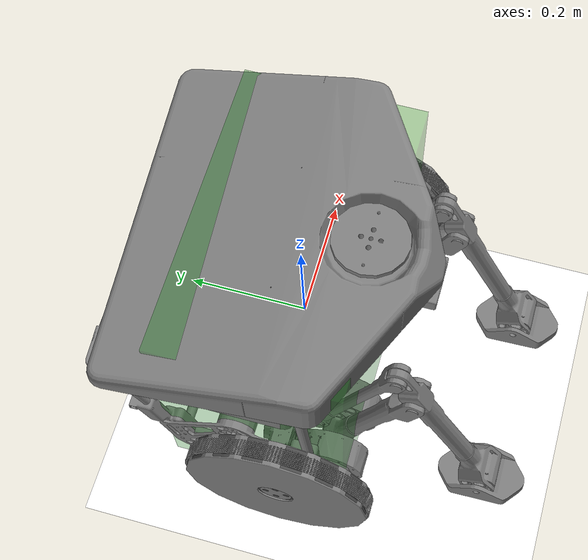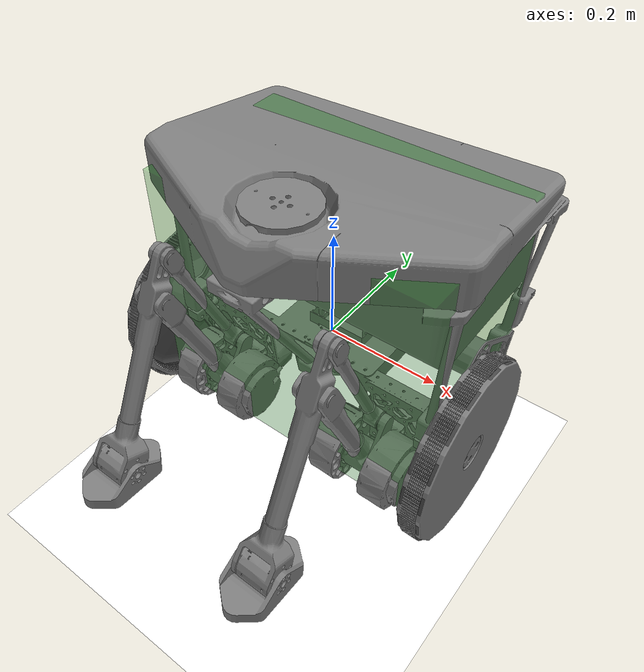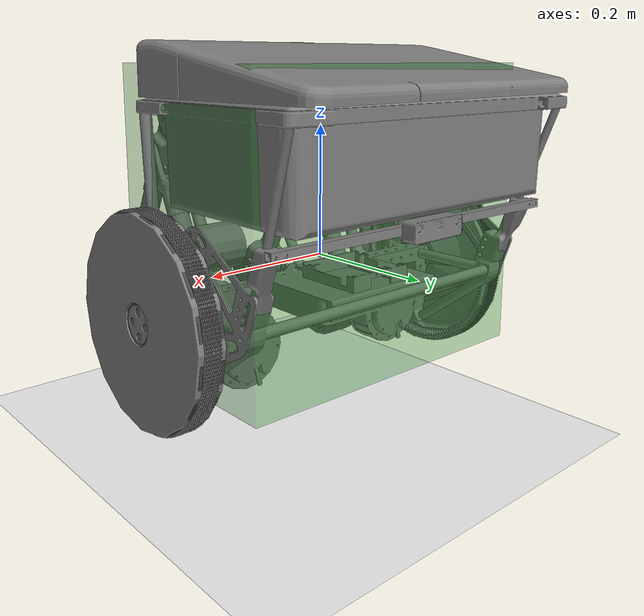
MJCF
<mujoco model="teambowl_mjlab">
  <compiler angle="radian" meshdir="meshes"/>

  <option integrator="RK4" timestep="0.002" gravity="0 0 -9.81"/>

  <default>
    <default class="wheel">
      <geom friction="1.2 0.005 0.0001"
            solref="0.02 1"
            solimp="0.9 0.95 0.001 0.5 2"/>
    </default>

    <!-- Motor joint: reflects rotor inertia through gearbox.
         armature overridden per-joint (N differs L vs R).
         damping ≈ back-EMF loss;  frictionloss ≈ Coulomb in gearbox. -->
    <default class="motor_joint">
      <joint damping="0.05" frictionloss="0.1"/>
    </default>

    <!-- Wheel joint: rolling-contact bearing + tire inertia. -->
    <default class="wheel_joint">
      <joint armature="0.0083" frictionloss="0.05"/>
    </default>
  </default>

  <asset>
    <mesh name="mesh59"  file="59.stl"/>
    <mesh name="mesh63"  file="63.stl"/>
    <mesh name="mesh75"  file="75.stl"/>
    <mesh name="mesh79"  file="79.stl"/>
    <mesh name="mesh83"  file="83.stl"/>
    <mesh name="mesh87"  file="87.stl"/>
    <mesh name="mesh100" file="100.stl"/>
    <mesh name="mesh104" file="104.stl"/>
    <mesh name="mesh111" file="111.stl"/>
    <mesh name="mesh127" file="127.stl"/>
    <mesh name="mesh131" file="131.stl"/>
    <mesh name="mesh150" file="150.stl"/>
  </asset>

  <worldbody>
    <!-- ============================================================
         Floor — friction matched to wheel defaults
    ============================================================ -->
    <geom name="floor" size="0 0 0.01" pos="0 0 -0.3" type="plane"
          rgba="1.0 1.0 1.0 1"
          friction="1.0 0.005 0.0001"
          solref="0.02 1"
          solimp="0.9 0.95 0.001 0.5 2"/>

    <!-- World origin anchor for ground-truth sensors -->
    <site name="world_origin" pos="0 0 0"/>

    <!-- ============================================================
         Main robot body  (freejoint — placed by RL reset events)
    ============================================================ -->
    <body name="Frame">
      <inertial pos="-0.00577203 0.0294079 0.0402019"
                quat="0.438736 0.553719 0.442563 0.552307"
                mass="13"
                diaginertia="0.573956 0.486537 0.334122"/>
      <joint name="Fastened 1_0" type="free"/>

      <!-- Body-frame IMU site -->
      <site name="imu_sensor_site" pos="0 0 0.05"/>

      <geom group="0" type="mesh" contype="0" conaffinity="0" mesh="mesh111"
            pos="-0.00546297 0.0848 0.0954208"/>
      <!-- Named for mjlab CollisionCfg pattern matching -->
      <geom group="2" name="frame_box_collision"
            type="box" size="0.25 0.15 0.22" pos="0 0.013 0.072"
            contype="1" conaffinity="1" rgba="0 0.5 0 0.3"/>

      <!-- ============================================================
           Right hip / leg assembly  (rigid — no joints = welded)
      ============================================================ -->
      <body name="Hip" pos="0.144537 -0.03389 -0.118135">
        <inertial pos="9.89938e-11 -0.0652752 -3.6294e-07"
                  quat="2.99052e-05 0.703737 2.96222e-05 0.71046"
                  mass="4.677" diaginertia="0.0203952 0.0192001 0.00962716"/>
        <geom group="0" type="mesh" contype="0" conaffinity="0" mesh="mesh59"
              pos="0.15 0.11869 0.213556"/>
        <body name="Thigh" pos="-0.03125 -0.07 0" quat="0.976296 -0.216439 0 0">
          <inertial pos="0.0235362 -0.120388 0.101442"
                    quat="0.636039 0.308271 -0.288111 0.646076"
                    mass="0.439" diaginertia="0.00607694 0.00604218 0.000157761"/>
          <geom group="0" type="mesh" contype="0" conaffinity="0" mesh="mesh79"
                pos="0.18125 0.18869 0.213556"/>
          <body name="Calf" pos="0.02625 -0.225522 0.190669" quat="0.984808 -0.173648 0 0">
            <inertial pos="0.00130628 0.0508335 -0.148234"
                      quat="0.697745 0.11292 -0.120002 0.697137"
                      mass="0.804" diaginertia="0.0145063 0.0144449 0.000354461"/>
            <geom group="0" type="mesh" contype="0" conaffinity="0" mesh="mesh131"
                  pos="0.155 0.414212 0.0228866"/>
            <body name="Foot" pos="0.02725 0.0957158 -0.279381" quat="0.953717 0.300706 0 0">
              <inertial pos="-0.0257628 0.0025349 -0.0233876"
                        quat="0.464535 0.517605 -0.534755 0.479927"
                        mass="0.242" diaginertia="0.000515045 0.000386185 0.000183729"/>
              <geom group="2" name="right_foot_collision"
                    type="mesh" contype="1" conaffinity="1" mesh="mesh127"
                    pos="0.12775 0.318497 0.302267"
                    friction="0.8 0.005 0.0001" solref="0.02 1" solimp="0.9 0.95 0.001 0.5 2"/>
            </body>
          </body>
        </body>
        <body name="Knee Kicker_1" pos="0.03125 -0.07 0" quat="0.92388 -0.382683 0 0">
          <inertial pos="-0.0160967 -0.0110483 0.0322497"
                    quat="0.979198 0.163089 -0.119078 -0.0198329"
                    mass="0.178" diaginertia="0.000242067 0.000232993 3.88114e-05"/>
          <geom group="0" type="mesh" contype="0" conaffinity="0" mesh="mesh87"
                pos="0.11875 0.18869 0.213556"/>
          <body name="Align bar" pos="-0.03625 -0.0225108 0.0657059" quat="0.984808 0.173648 0 0">
            <inertial pos="-2.02172e-12 -0.138854 0.117827"
                      quat="0.641754 0.296903 -0.296903 0.641754"
                      mass="0.186" diaginertia="0.00239967 0.00239678 2.56216e-05"/>
            <geom group="0" type="mesh" contype="0" conaffinity="0" mesh="mesh83"
                  pos="0.155 0.211201 0.14785"/>
          </body>
        </body>
      </body>

      <!-- ============================================================
           Left hip / leg assembly  (rigid — no joints = welded)
      ============================================================ -->
      <body name="Hip_1" pos="-0.155463 -0.03389 -0.118135">
        <inertial pos="9.89938e-11 -0.0652752 -3.6294e-07"
                  quat="2.99052e-05 0.703737 2.96222e-05 0.71046"
                  mass="4.677" diaginertia="0.0203952 0.0192001 0.00962716"/>
        <geom group="0" type="mesh" contype="0" conaffinity="0" mesh="mesh59"
              pos="0.15 0.11869 0.213556"/>
        <body name="Thigh_1" pos="-0.03125 -0.07 0" quat="0.976296 -0.216439 0 0">
          <inertial pos="0.0235362 -0.120388 0.101442"
                    quat="0.636039 0.308271 -0.288111 0.646076"
                    mass="0.439" diaginertia="0.00607694 0.00604218 0.000157761"/>
          <geom group="0" type="mesh" contype="0" conaffinity="0" mesh="mesh79"
                pos="0.18125 0.18869 0.213556"/>
          <body name="Calf_1" pos="0.02625 -0.225522 0.190669" quat="0.984808 -0.173648 0 0">
            <inertial pos="0.00130628 0.0508335 -0.148234"
                      quat="0.697745 0.11292 -0.120002 0.697137"
                      mass="0.804" diaginertia="0.0145063 0.0144449 0.000354461"/>
            <geom group="0" type="mesh" contype="0" conaffinity="0" mesh="mesh131"
                  pos="0.155 0.414212 0.0228866"/>
            <body name="Foot_1" pos="0.02725 0.0957158 -0.279381" quat="0.953717 0.300706 0 0">
              <inertial pos="-0.0257628 0.0025349 -0.0233876"
                        quat="0.464535 0.517605 -0.534755 0.479927"
                        mass="0.242" diaginertia="0.000515045 0.000386185 0.000183729"/>
              <geom group="2" name="left_foot_collision"
                    type="mesh" contype="1" conaffinity="1" mesh="mesh127"
                    pos="0.12775 0.318497 0.302267"
                    friction="0.8 0.005 0.0001" solref="0.02 1" solimp="0.9 0.95 0.001 0.5 2"/>
            </body>
          </body>
        </body>
        <body name="Knee Kicker" pos="0.03125 -0.07 0" quat="0.92388 -0.382683 0 0">
          <inertial pos="-0.0160967 -0.0110483 0.0322497"
                    quat="0.979198 0.163089 -0.119078 -0.0198329"
                    mass="0.178" diaginertia="0.000242067 0.000232993 3.88114e-05"/>
          <geom group="0" type="mesh" contype="0" conaffinity="0" mesh="mesh87"
                pos="0.11875 0.18869 0.213556"/>
          <body name="Align bar_1" pos="-0.03625 -0.0225108 0.0657059" quat="0.984808 0.173648 0 0">
            <inertial pos="-2.02172e-12 -0.138854 0.117827"
                      quat="0.641754 0.296903 -0.296903 0.641754"
                      mass="0.186" diaginertia="0.00239967 0.00239678 2.56216e-05"/>
            <geom group="0" type="mesh" contype="0" conaffinity="0" mesh="mesh83"
                  pos="0.155 0.211201 0.14785"/>
          </body>
        </body>
      </body>

      <body name="Wheel Gear_1" pos="-0.282193 0.0390428 0.0543905"
            quat="0.707105 -0.707108 0 0">
        <inertial pos="0 2.72439e-07 -2.20681e-05"
                  quat="-0.00435929 0.707093 -0.00435929 0.707093"
                  mass="0.046" diaginertia="3.58168e-06 3.57739e-06 2.96111e-06"/>
        <!-- class="motor_joint" gives damping + frictionloss; armature set here for left N -->
        <joint name="left_motor_0" class="motor_joint"
               pos="0 0 0" axis="-1 0 0"
               armature="0.00876"/>
        <geom group="0" type="mesh" contype="0" conaffinity="0" mesh="mesh100"
              pos="0.27443 0.0457572 0.0410302"/>
      </body>

      <body name="Wheel_1" pos="-0.302263 -0.03839 -0.056195">
        <inertial pos="0.00423538 7.2923e-09 -1.13899e-10"
                  mass="0.707" diaginertia="0.00916228 0.00465503 0.00465503"/>
        <!-- class="wheel_joint" gives armature (tire) + frictionloss (bearing) -->
        <joint name="left_wheel_0" class="wheel_joint"
               pos="0 0 0" axis="-1 0 0"/>
        <geom group="0" type="mesh" contype="0" conaffinity="0" mesh="mesh150"
              pos="0.2968 0.12319 0.151616"/>
        <geom group="2" name="left_wheel_collision"
              class="wheel" type="cylinder" size="0.154 0.018"
              pos="0.013 0 0" quat="0.7071 0 0.7071 0" contype="1" conaffinity="1" rgba="0.2 0.2 0.2 0.6"/>
      </body>

      <!-- Lid + lid gear (passive, cosmetic only) -->
      <body name="Lid" pos="-0.00546297 -0.11133 0.294511">
        <inertial pos="-0.00667876 0.103152 -0.00905696"
                  quat="-0.00956325 0.706186 0.0361322 0.70704"
                  mass="2.818" diaginertia="0.0965965 0.0585789 0.040202"/>
        <geom group="0" type="mesh" contype="0" conaffinity="0" mesh="mesh104"
              pos="0 0.19613 -0.20009"/>
      </body>

      <body name="Lid Gear" pos="-0.00560326 -0.163819 0.240861">
        <inertial pos="1.04235e-12 2.50691e-11 0.0144022"
                  quat="0.5 0.5 -0.5 0.5"
                  mass="0.025" diaginertia="3.67541e-06 3.37396e-06 3.37396e-06"/>
        <geom group="0" type="mesh" contype="0" conaffinity="0" mesh="mesh63"
              pos="0.000140291 0.248619 -0.14544"/>
      </body>

      <body name="Wheel Gear" pos="0.271267 0.0390428 0.0543905">
        <inertial pos="0 2.72439e-07 -2.20681e-05"
                  quat="-0.00435929 0.707093 -0.00435929 0.707093"
                  mass="0.046" diaginertia="3.58168e-06 3.57739e-06 2.96111e-06"/>
        <!-- class="motor_joint" gives damping + frictionloss; armature set here for right N -->
        <joint name="right_motor_0" class="motor_joint"
               pos="0 0 0" axis="1 0 0"
               armature="0.01260"/>
        <geom group="0" type="mesh" contype="0" conaffinity="0" mesh="mesh100"
              pos="0.27443 0.0457572 0.0410302"/>
      </body>

      <body name="Wheel" pos="0.26638 -0.03839 -0.056195"
            quat="1.76039e-12 1.32679e-06 -1 -1.32679e-06">
        <inertial pos="-0.0207221 7.2923e-09 -1.13899e-10"
                  mass="0.707" diaginertia="0.00916228 0.00465503 0.00465503"/>
        <!-- class="wheel_joint" gives armature (tire) + frictionloss (bearing) -->
        <joint name="right_wheel_0" class="wheel_joint"
               pos="0 0 0" axis="-1 0 0"/>
        <geom group="0" type="mesh" contype="0" conaffinity="0" mesh="mesh150"
              pos="0.271842 0.12319 0.151616"/>
        <geom group="2" name="right_wheel_collision"
              class="wheel" type="cylinder" size="0.154 0.018"
              pos="-0.012 0 0" quat="0.7071 0 0.7071 0" contype="1" conaffinity="1" rgba="0.2 0.2 0.2 0.6"/>
      </body>

    </body>
  </worldbody>

  <equality>
    <joint joint1="left_wheel_0"  joint2="left_motor_0"
           polycoef="0 -0.08275862068965517 0 0 0"/>
    <joint joint1="right_wheel_0" joint2="right_motor_0"
           polycoef="0 -0.06896551724137931 0 0 0"/>
  </equality>

  <actuator>
    <velocity name="act_left_motor"  joint="left_motor_0"
              kv="1.5" ctrlrange="-40 40"/>
    <velocity name="act_right_motor" joint="right_motor_0"
              kv="1.5" ctrlrange="-48 48"/>
  </actuator>

  <sensor>
    <!-- Body-frame IMU -->
    <gyro         name="imu_gyro"     site="imu_sensor_site"/>
    <accelerometer name="imu_accel"   site="imu_sensor_site"/>
    <velocimeter  name="imu_lin_vel"  site="imu_sensor_site"/>

    <!-- Global-frame ground-truth -->
    <framepos    name="gt_pos"    objtype="body" objname="Frame"/>
    <framequat   name="gt_quat"   objtype="body" objname="Frame"/>
    <framelinvel name="gt_linvel" objtype="body" objname="Frame"/>
    <frameangvel name="gt_angvel" objtype="body" objname="Frame"/>

    <!-- Wheel and motor joint velocities -->
    <jointvel name="left_wheel_vel"  joint="left_wheel_0"/>
    <jointvel name="right_wheel_vel" joint="right_wheel_0"/>
    <jointvel name="left_motor_vel"  joint="left_motor_0"/>
    <jointvel name="right_motor_vel" joint="right_motor_0"/>
  </sensor>

</mujoco>
